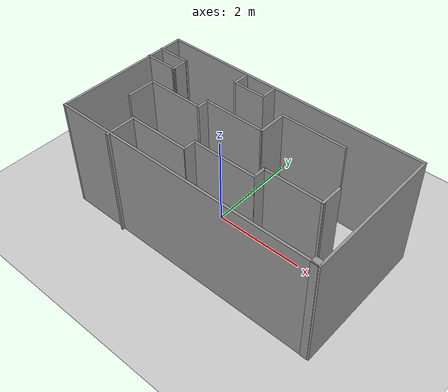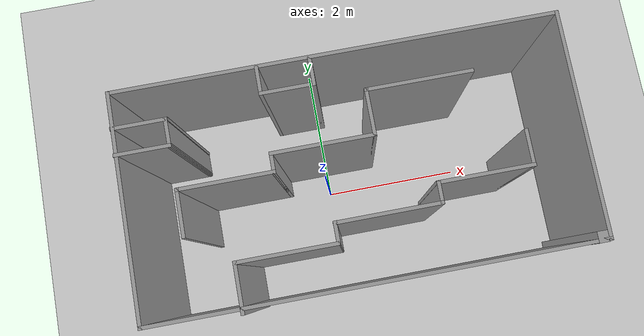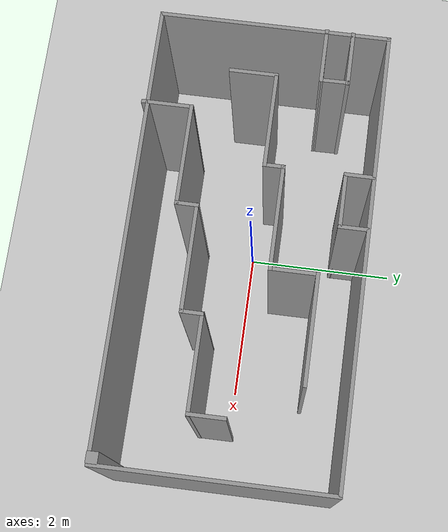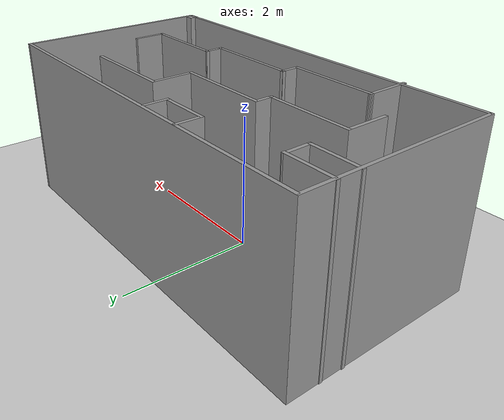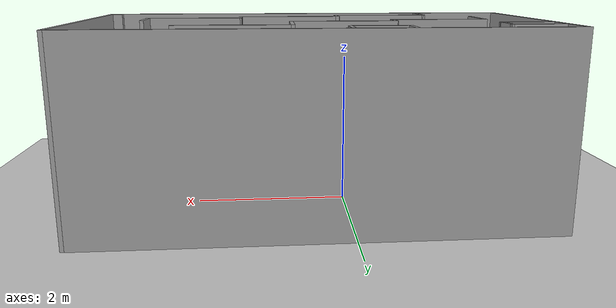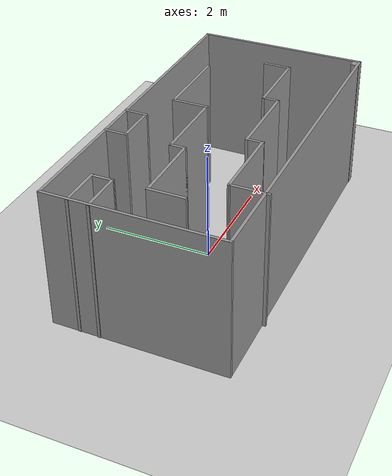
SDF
<sdf version="1.7">
 <world name="default">
  <light name="sun" type="directional">
   <pose>0 0 10 0 -0 0</pose>
   <diffuse>0.8 0.8 0.8 1</diffuse>
   <specular>0.2 0.2 0.2 1</specular>
   <attenuation>
    <range>1000</range>
    <constant>0.9</constant>
    <linear>0.01</linear>
    <quadratic>0.001</quadratic>
   </attenuation>
   <direction>-0.5 0.1 -0.9</direction>
   <spot><inner_angle>0</inner_angle><outer_angle>0</outer_angle><falloff>0</falloff></spot>
  </light>
  <model name="ground_plane">
   <static>1</static>
   <link name="link">
    <collision name="collision">
     <geometry><plane><normal>0 0 1</normal><size>100 100</size></plane></geometry>
     <surface>
      <contact><collide_bitmask>65535</collide_bitmask></contact>
      <friction><ode><mu>100</mu><mu2>50</mu2></ode></friction>
     </surface>
    </collision>
    <visual name="visual">
     <cast_shadows>0</cast_shadows>
     <geometry><plane><normal>0 0 1</normal><size>100 100</size></plane></geometry>
     <material>
      <script><uri>file://media/materials/scripts/gazebo.material</uri><name>Gazebo/Grey</name></script>
     </material>
    </visual>
   </link>
  </model>
  <gravity>0 0 -9.8</gravity>
  <magnetic_field>6e-06 2.3e-05 -4.2e-05</magnetic_field>
  <atmosphere type="adiabatic"/>
  <physics type="ode">
   <max_step_size>0.001</max_step_size>
   <real_time_factor>1</real_time_factor>
   <real_time_update_rate>1000</real_time_update_rate>
  </physics>
  <scene><ambient>0.4 0.4 0.4 1</ambient><background>0.7 0.7 0.7 1</background><shadows>1</shadows></scene>
  <audio><device>default</device></audio>
  <spherical_coordinates>
   <surface_model>EARTH_WGS84</surface_model>
   <latitude_deg>0</latitude_deg>
   <longitude_deg>0</longitude_deg>
   <elevation>0</elevation>
   <heading_deg>0</heading_deg>
  </spherical_coordinates>
  <model name="modelo_con_obstaculos">
   <pose>0.401 -0.027538 0 0 -0 0</pose>
   <link name="Wall_13">
    <collision name="Wall_13_Collision">
     <geometry><box><size>3.07 0.05 2.5</size></box></geometry>
     <pose>0 0 1.25 0 -0 0</pose>
    </collision>
    <visual name="Wall_13_Visual">
     <pose>0 0 1.25 0 -0 0</pose>
     <geometry><box><size>3.07 0.05 2.5</size></box></geometry>
     <material>
      <script><uri>file://media/materials/scripts/gazebo.material</uri><name>Gazebo/Grey</name></script>
      <ambient>1 1 1 1</ambient>
     </material>
     <meta><layer>0</layer></meta>
    </visual>
    <pose>2.982 0.028538 0 0 -0 1.5708</pose>
   </link>
   <link name="Wall_15">
    <collision name="Wall_15_Collision">
     <geometry><box><size>5.9995 0.05 2.5</size></box></geometry>
     <pose>0 0 1.25 0 -0 0</pose>
    </collision>
    <visual name="Wall_15_Visual">
     <pose>0 0 1.25 0 -0 0</pose>
     <geometry><box><size>5.9995 0.05 2.5</size></box></geometry>
     <material>
      <script><uri>file://media/materials/scripts/gazebo.material</uri><name>Gazebo/Grey</name></script>
      <ambient>1 1 1 1</ambient>
     </material>
     <meta><layer>0</layer></meta>
    </visual>
    <pose>0.007 1.53854 0 0 -0 3.14159</pose>
   </link>
   <link name="Wall_2">
    <collision name="Wall_2_Collision">
     <geometry><box><size>3.07 0.05 2.5</size></box></geometry>
     <pose>0 0 1.25 0 -0 0</pose>
    </collision>
    <visual name="Wall_2_Visual">
     <pose>0 0 1.25 0 -0 0</pose>
     <geometry><box><size>3.07 0.05 2.5</size></box></geometry>
     <material>
      <script><uri>file://media/materials/scripts/gazebo.material</uri><name>Gazebo/Grey</name></script>
      <ambient>1 1 1 1</ambient>
     </material>
     <meta><layer>0</layer></meta>
    </visual>
    <pose>-2.968 0.028538 0 0 -0 -1.5708</pose>
   </link>
   <link name="Wall_22">
    <collision name="Wall_22_Collision">
     <geometry><box><size>0.649896 0.05 2.5</size></box></geometry>
     <pose>0 0 1.25 0 -0 0</pose>
    </collision>
    <visual name="Wall_22_Visual">
     <pose>0 0 1.25 0 -0 0</pose>
     <geometry><box><size>0.649896 0.05 2.5</size></box></geometry>
     <material>
      <script><uri>file://media/materials/scripts/gazebo.material</uri><name>Gazebo/Grey</name></script>
      <ambient>1 1 1 1</ambient>
     </material>
     <meta><layer>0</layer></meta>
    </visual>
    <pose>-2.276 -0.168462 0 0 -0 1.5708</pose>
   </link>
   <link name="Wall_23">
    <collision name="Wall_23_Collision">
     <geometry><box><size>1.3 0.05 2.5</size></box></geometry>
     <pose>0 0 1.25 0 -0 0</pose>
    </collision>
    <visual name="Wall_23_Visual">
     <pose>0 0 1.25 0 -0 0</pose>
     <geometry><box><size>1.3 0.05 2.5</size></box></geometry>
     <material>
      <script><uri>file://media/materials/scripts/gazebo.material</uri><name>Gazebo/Grey</name></script>
      <ambient>1 1 1 1</ambient>
     </material>
     <meta><layer>0</layer></meta>
    </visual>
    <pose>-1.651 0.131538 0 0 -0 0</pose>
   </link>
   <link name="Wall_24">
    <collision name="Wall_24_Collision">
     <geometry><box><size>0.29 0.05 2.5</size></box></geometry>
     <pose>0 0 1.25 0 -0 0</pose>
    </collision>
    <visual name="Wall_24_Visual">
     <pose>0 0 1.25 0 -0 0</pose>
     <geometry><box><size>0.29 0.05 2.5</size></box></geometry>
     <material>
      <script><uri>file://media/materials/scripts/gazebo.material</uri><name>Gazebo/Grey</name></script>
      <ambient>1 1 1 1</ambient>
     </material>
     <meta><layer>0</layer></meta>
    </visual>
    <pose>-1.026 0.251538 0 0 -0 1.5708</pose>
   </link>
   <link name="Wall_25">
    <collision name="Wall_25_Collision">
     <geometry><box><size>1.4 0.05 2.5</size></box></geometry>
     <pose>0 0 1.25 0 -0 0</pose>
    </collision>
    <visual name="Wall_25_Visual">
     <pose>0 0 1.25 0 -0 0</pose>
     <geometry><box><size>1.4 0.05 2.5</size></box></geometry>
     <material>
      <script><uri>file://media/materials/scripts/gazebo.material</uri><name>Gazebo/Grey</name></script>
      <ambient>1 1 1 1</ambient>
     </material>
     <meta><layer>0</layer></meta>
    </visual>
    <pose>-0.351 0.371538 0 0 -0 0</pose>
   </link>
   <link name="Wall_26">
    <collision name="Wall_26_Collision">
     <geometry><box><size>0.65 0.05 2.5</size></box></geometry>
     <pose>0 0 1.25 0 -0 0</pose>
    </collision>
    <visual name="Wall_26_Visual">
     <pose>0 0 1.25 0 -0 0</pose>
     <geometry><box><size>0.65 0.05 2.5</size></box></geometry>
     <material>
      <script><uri>file://media/materials/scripts/gazebo.material</uri><name>Gazebo/Grey</name></script>
      <ambient>1 1 1 1</ambient>
     </material>
     <meta><layer>0</layer></meta>
    </visual>
    <pose>0.324 0.671538 0 0 -0 1.5708</pose>
   </link>
   <link name="Wall_27">
    <collision name="Wall_27_Collision">
     <geometry><box><size>1.45 0.05 2.5</size></box></geometry>
     <pose>0 0 1.25 0 -0 0</pose>
    </collision>
    <visual name="Wall_27_Visual">
     <pose>0 0 1.25 0 -0 0</pose>
     <geometry><box><size>1.45 0.05 2.5</size></box></geometry>
     <material>
      <script><uri>file://media/materials/scripts/gazebo.material</uri><name>Gazebo/Grey</name></script>
      <ambient>1 1 1 1</ambient>
     </material>
     <meta><layer>0</layer></meta>
    </visual>
    <pose>1.024 0.971538 0 0 -0 0</pose>
   </link>
   <link name="Wall_31">
    <collision name="Wall_31_Collision">
     <geometry><box><size>0.75 0.05 2.5</size></box></geometry>
     <pose>0 0 1.25 0 -0 0</pose>
    </collision>
    <visual name="Wall_31_Visual">
     <pose>0 0 1.25 0 -0 0</pose>
     <geometry><box><size>0.75 0.05 2.5</size></box></geometry>
     <material>
      <script><uri>file://media/materials/scripts/gazebo.material</uri><name>Gazebo/Grey</name></script>
      <ambient>1 1 1 1</ambient>
     </material>
     <meta><layer>0</layer></meta>
    </visual>
    <pose>-2.632 0.714538 0 0 -0 0</pose>
   </link>
   <link name="Wall_32">
    <collision name="Wall_32_Collision">
     <geometry><box><size>0.400027 0.05 2.5</size></box></geometry>
     <pose>0 0 1.25 0 -0 0</pose>
    </collision>
    <visual name="Wall_32_Visual">
     <pose>0 0 1.25 0 -0 0</pose>
     <geometry><box><size>0.400027 0.05 2.5</size></box></geometry>
     <material>
      <script><uri>file://media/materials/scripts/gazebo.material</uri><name>Gazebo/Grey</name></script>
      <ambient>1 1 1 1</ambient>
     </material>
     <meta><layer>0</layer></meta>
    </visual>
    <pose>-2.28417 0.889538 0 0 -0 1.58322</pose>
   </link>
   <link name="Wall_35">
    <collision name="Wall_35_Collision">
     <geometry><box><size>0.75 0.05 2.5</size></box></geometry>
     <pose>0 0 1.25 0 -0 0</pose>
    </collision>
    <visual name="Wall_35_Visual">
     <pose>0 0 1.25 0 -0 0</pose>
     <geometry><box><size>0.75 0.05 2.5</size></box></geometry>
     <material>
      <script><uri>file://media/materials/scripts/gazebo.material</uri><name>Gazebo/Grey</name></script>
      <ambient>1 1 1 1</ambient>
     </material>
     <meta><layer>0</layer></meta>
    </visual>
    <pose>-2.62765 1.06454 0 0 -0 3.14159</pose>
   </link>
   <link name="Wall_37">
    <collision name="Wall_37_Collision">
     <geometry><box><size>1.36046 0.05 2.5</size></box></geometry>
     <pose>0 0 1.25 0 -0 0</pose>
    </collision>
    <visual name="Wall_37_Visual">
     <pose>0 0 1.25 0 -0 0</pose>
     <geometry><box><size>1.36046 0.05 2.5</size></box></geometry>
     <material>
      <script><uri>file://media/materials/scripts/gazebo.material</uri><name>Gazebo/Grey</name></script>
      <ambient>1 1 1 1</ambient>
     </material>
     <meta><layer>0</layer></meta>
    </visual>
    <pose>-1.04316 -0.9095 0 0 -0 3.14012</pose>
   </link>
   <link name="Wall_38">
    <collision name="Wall_38_Collision">
     <geometry><box><size>0.68 0.05 2.5</size></box></geometry>
     <pose>0 0 1.25 0 -0 0</pose>
    </collision>
    <visual name="Wall_38_Visual">
     <pose>0 0 1.25 0 -0 0</pose>
     <geometry><box><size>0.68 0.05 2.5</size></box></geometry>
     <material>
      <script><uri>file://media/materials/scripts/gazebo.material</uri><name>Gazebo/Grey</name></script>
      <ambient>1 1 1 1</ambient>
     </material>
     <meta><layer>0</layer></meta>
    </visual>
    <pose>-1.69839 -1.22354 0 0 -0 -1.5708</pose>
   </link>
   <link name="Wall_40">
    <collision name="Wall_40_Collision">
     <geometry><box><size>0.312825 0.05 2.5</size></box></geometry>
     <pose>0 0 1.25 0 -0 0</pose>
    </collision>
    <visual name="Wall_40_Visual">
     <pose>0 0 1.25 0 -0 0</pose>
     <geometry><box><size>0.312825 0.05 2.5</size></box></geometry>
     <material>
      <script><uri>file://media/materials/scripts/gazebo.material</uri><name>Gazebo/Grey</name></script>
      <ambient>1 1 1 1</ambient>
     </material>
     <meta><layer>0</layer></meta>
    </visual>
    <pose>-0.381876 -0.77905 0 0 -0 1.56803</pose>
   </link>
   <link name="Wall_41">
    <collision name="Wall_41_Collision">
     <geometry><box><size>1.43086 0.05 2.5</size></box></geometry>
     <pose>0 0 1.25 0 -0 0</pose>
    </collision>
    <visual name="Wall_41_Visual">
     <pose>0 0 1.25 0 -0 0</pose>
     <geometry><box><size>1.43086 0.05 2.5</size></box></geometry>
     <material>
      <script><uri>file://media/materials/scripts/gazebo.material</uri><name>Gazebo/Grey</name></script>
      <ambient>1 1 1 1</ambient>
     </material>
     <meta><layer>0</layer></meta>
    </visual>
    <pose>0.306779 -0.648707 0 0 -0 0.001548</pose>
   </link>
   <link name="Wall_42">
    <collision name="Wall_42_Collision">
     <geometry><box><size>0.308457 0.05 2.5</size></box></geometry>
     <pose>0 0 1.25 0 -0 0</pose>
    </collision>
    <visual name="Wall_42_Visual">
     <pose>0 0 1.25 0 -0 0</pose>
     <geometry><box><size>0.308457 0.05 2.5</size></box></geometry>
     <material>
      <script><uri>file://media/materials/scripts/gazebo.material</uri><name>Gazebo/Grey</name></script>
      <ambient>1 1 1 1</ambient>
     </material>
     <meta><layer>0</layer></meta>
    </visual>
    <pose>1.00015 -0.515953 0 0 -0 1.56707</pose>
   </link>
   <link name="Wall_43">
    <collision name="Wall_43_Collision">
     <geometry><box><size>1.29729 0.05 2.5</size></box></geometry>
     <pose>0 0 1.25 0 -0 0</pose>
    </collision>
    <visual name="Wall_43_Visual">
     <pose>0 0 1.25 0 -0 0</pose>
     <geometry><box><size>1.29729 0.05 2.5</size></box></geometry>
     <material>
      <script><uri>file://media/materials/scripts/gazebo.material</uri><name>Gazebo/Grey</name></script>
      <ambient>1 1 1 1</ambient>
     </material>
     <meta><layer>0</layer></meta>
    </visual>
    <pose>1.62181 -0.386725 0 0 -0 0</pose>
   </link>
   <link name="Wall_44">
    <collision name="Wall_44_Collision">
     <geometry><box><size>0.5 0.05 2.5</size></box></geometry>
     <pose>0 0 1.25 0 -0 0</pose>
    </collision>
    <visual name="Wall_44_Visual">
     <pose>0 0 1.25 0 -0 0</pose>
     <geometry><box><size>0.5 0.05 2.5</size></box></geometry>
     <material>
      <script><uri>file://media/materials/scripts/gazebo.material</uri><name>Gazebo/Grey</name></script>
      <ambient>1 1 1 1</ambient>
     </material>
     <meta><layer>0</layer></meta>
    </visual>
    <pose>2.24116 -0.161725 0 0 -0 1.5708</pose>
   </link>
   <link name="Wall_46">
    <collision name="Wall_46_Collision">
     <geometry><box><size>0.400296 0.05 2.5</size></box></geometry>
     <pose>0 0 1.25 0 -0 0</pose>
    </collision>
    <visual name="Wall_46_Visual">
     <pose>0 0 1.25 0 -0 0</pose>
     <geometry><box><size>0.400296 0.05 2.5</size></box></geometry>
     <material>
      <script><uri>file://media/materials/scripts/gazebo.material</uri><name>Gazebo/Grey</name></script>
      <ambient>1 1 1 1</ambient>
     </material>
     <meta><layer>0</layer></meta>
    </visual>
    <pose>-1.024 1.34854 0 0 -0 -1.5708</pose>
   </link>
   <link name="Wall_47">
    <collision name="Wall_47_Collision">
     <geometry><box><size>0.75 0.05 2.5</size></box></geometry>
     <pose>0 0 1.25 0 -0 0</pose>
    </collision>
    <visual name="Wall_47_Visual">
     <pose>0 0 1.25 0 -0 0</pose>
     <geometry><box><size>0.75 0.05 2.5</size></box></geometry>
     <material>
      <script><uri>file://media/materials/scripts/gazebo.material</uri><name>Gazebo/Grey</name></script>
      <ambient>1 1 1 1</ambient>
     </material>
     <meta><layer>0</layer></meta>
    </visual>
    <pose>-0.674 1.17354 0 0 -0 0</pose>
   </link>
   <link name="Wall_49">
    <collision name="Wall_49_Collision">
     <geometry><box><size>0.4 0.05 2.5</size></box></geometry>
     <pose>0 0 1.25 0 -0 0</pose>
    </collision>
    <visual name="Wall_49_Visual">
     <pose>0 0 1.25 0 -0 0</pose>
     <geometry><box><size>0.4 0.05 2.5</size></box></geometry>
     <material>
      <script><uri>file://media/materials/scripts/gazebo.material</uri><name>Gazebo/Grey</name></script>
      <ambient>1 1 1 1</ambient>
     </material>
     <meta><layer>0</layer></meta>
    </visual>
    <pose>-0.324 1.34854 0 0 -0 1.5708</pose>
   </link>
   <link name="Wall_5">
    <collision name="Wall_5_Collision">
     <geometry><box><size>0.15 0.15 2.5</size></box></geometry>
     <pose>0 0 1.25 0 -0 0</pose>
    </collision>
    <visual name="Wall_5_Visual">
     <pose>0 0 1.25 0 -0 0</pose>
     <geometry><box><size>0.15 0.15 2.5</size></box></geometry>
     <material>
      <script><uri>file://media/materials/scripts/gazebo.material</uri><name>Gazebo/Grey</name></script>
      <ambient>1 1 1 1</ambient>
     </material>
     <meta><layer>0</layer></meta>
    </visual>
    <pose>2.89429 -1.43886 0 0 -0 0</pose>
   </link>
   <link name="Wall_9">
    <collision name="Wall_9_Collision">
     <geometry><box><size>6 0.05 2.5</size></box></geometry>
     <pose>0 0 1.25 0 -0 0</pose>
    </collision>
    <visual name="Wall_9_Visual">
     <pose>0 0 1.25 0 -0 0</pose>
     <geometry><box><size>6 0.05 2.5</size></box></geometry>
     <material>
      <script><uri>file://media/materials/scripts/gazebo.material</uri><name>Gazebo/Grey</name></script>
      <ambient>1 1 1 1</ambient>
     </material>
     <meta><layer>0</layer></meta>
    </visual>
    <pose>0.007 -1.48146 0 0 -0 0</pose>
   </link>
   <static>1</static>
  </model>
 </world>
</sdf>
